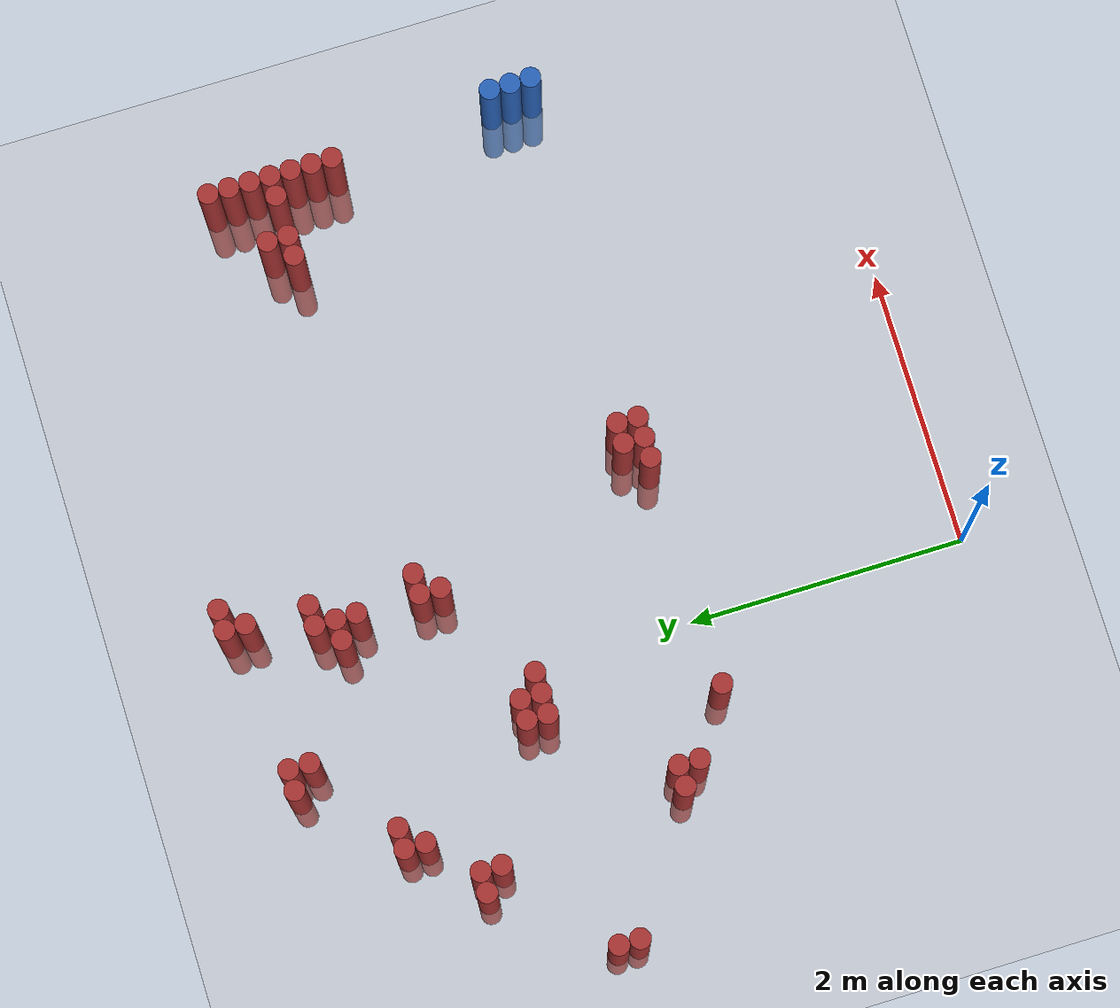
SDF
<sdf version="1.6">
 <world name="default">
  <model name="ground_plane">
   <static>1</static>
   <link name="link">
    <collision name="collision">
     <geometry><plane><normal>0 0 1</normal><size>100 100</size></plane></geometry>
     <surface><friction><ode><mu>100</mu><mu2>50</mu2></ode></friction></surface>
    </collision>
    <visual name="visual">
     <cast_shadows>0</cast_shadows>
     <geometry><plane><normal>0 0 1</normal><size>100 100</size></plane></geometry>
     <material>
      <script><uri>file://media/materials/scripts/gazebo.material</uri><name>Gazebo/Grey</name></script>
     </material>
    </visual>
   </link>
  </model>
  <model name="unit_cylinder_140">
   <static>1</static>
   <pose>3.925000 1.975000 0.000000 0.000000 0.000000 0.000000</pose>
   <link name="link">
    <inertial>
     <mass>1</mass>
     <inertia><ixx>0.145833</ixx><ixy>0</ixy><ixz>0</ixz><iyy>0.145833</iyy><iyz>0</iyz><izz>0.125</izz></inertia>
    </inertial>
    <collision name="collision">
     <geometry><cylinder><radius>0.075000</radius><length>1.5</length></cylinder></geometry>
    </collision>
    <visual name="visual">
     <geometry><cylinder><radius>0.075000</radius><length>1.5</length></cylinder></geometry>
     <material>
      <ambient>0.152000 0.379000 0.720000 1</ambient>
      <diffuse>0.152000 0.379000 0.720000 1</diffuse>
     </material>
     <material>
      <script><name>Gazebo/Grey</name><uri>file://media/materials/scripts/gazebo.material</uri></script>
     </material>
    </visual>
   </link>
  </model>
  <model name="unit_cylinder_142">
   <static>1</static>
   <pose>3.925000 2.125000 0.000000 0.000000 0.000000 0.000000</pose>
   <link name="link">
    <inertial>
     <mass>1</mass>
     <inertia><ixx>0.145833</ixx><ixy>0</ixy><ixz>0</ixz><iyy>0.145833</iyy><iyz>0</iyz><izz>0.125</izz></inertia>
    </inertial>
    <collision name="collision">
     <geometry><cylinder><radius>0.075000</radius><length>1.5</length></cylinder></geometry>
    </collision>
    <visual name="visual">
     <geometry><cylinder><radius>0.075000</radius><length>1.5</length></cylinder></geometry>
     <material>
      <ambient>0.152000 0.379000 0.720000 1</ambient>
      <diffuse>0.152000 0.379000 0.720000 1</diffuse>
     </material>
     <material>
      <script><name>Gazebo/Grey</name><uri>file://media/materials/scripts/gazebo.material</uri></script>
     </material>
    </visual>
   </link>
  </model>
  <model name="unit_cylinder_144">
   <static>1</static>
   <pose>3.925000 2.275000 0.000000 0.000000 0.000000 0.000000</pose>
   <link name="link">
    <inertial>
     <mass>1</mass>
     <inertia><ixx>0.145833</ixx><ixy>0</ixy><ixz>0</ixz><iyy>0.145833</iyy><iyz>0</iyz><izz>0.125</izz></inertia>
    </inertial>
    <collision name="collision">
     <geometry><cylinder><radius>0.075000</radius><length>1.5</length></cylinder></geometry>
    </collision>
    <visual name="visual">
     <geometry><cylinder><radius>0.075000</radius><length>1.5</length></cylinder></geometry>
     <material>
      <ambient>0.152000 0.379000 0.720000 1</ambient>
      <diffuse>0.152000 0.379000 0.720000 1</diffuse>
     </material>
     <material>
      <script><name>Gazebo/Grey</name><uri>file://media/materials/scripts/gazebo.material</uri></script>
     </material>
    </visual>
   </link>
  </model>
  <model name="unit_cylinder_301">
   <static>1</static>
   <pose>-2.075000 3.025000 0.000000 0.000000 0.000000 0.000000</pose>
   <link name="link">
    <inertial>
     <mass>1</mass>
     <inertia><ixx>0.145833</ixx><ixy>0</ixy><ixz>0</ixz><iyy>0.145833</iyy><iyz>0</iyz><izz>0.125</izz></inertia>
    </inertial>
    <collision name="collision">
     <geometry><cylinder><radius>0.075000</radius><length>1.5</length></cylinder></geometry>
    </collision>
    <visual name="visual">
     <geometry><cylinder><radius>0.075000</radius><length>1.5</length></cylinder></geometry>
     <material>
      <ambient>0.648000 0.192000 0.192000 1</ambient>
      <diffuse>0.648000 0.192000 0.192000 1</diffuse>
     </material>
     <material>
      <script><name>Gazebo/Grey</name><uri>file://media/materials/scripts/gazebo.material</uri></script>
     </material>
    </visual>
   </link>
  </model>
  <model name="unit_cylinder_302">
   <static>1</static>
   <pose>-2.075000 3.175000 0.000000 0.000000 0.000000 0.000000</pose>
   <link name="link">
    <inertial>
     <mass>1</mass>
     <inertia><ixx>0.145833</ixx><ixy>0</ixy><ixz>0</ixz><iyy>0.145833</iyy><iyz>0</iyz><izz>0.125</izz></inertia>
    </inertial>
    <collision name="collision">
     <geometry><cylinder><radius>0.075000</radius><length>1.5</length></cylinder></geometry>
    </collision>
    <visual name="visual">
     <geometry><cylinder><radius>0.075000</radius><length>1.5</length></cylinder></geometry>
     <material>
      <ambient>0.648000 0.192000 0.192000 1</ambient>
      <diffuse>0.648000 0.192000 0.192000 1</diffuse>
     </material>
     <material>
      <script><name>Gazebo/Grey</name><uri>file://media/materials/scripts/gazebo.material</uri></script>
     </material>
    </visual>
   </link>
  </model>
  <model name="unit_cylinder_313">
   <static>1</static>
   <pose>-1.475000 3.925000 0.000000 0.000000 0.000000 0.000000</pose>
   <link name="link">
    <inertial>
     <mass>1</mass>
     <inertia><ixx>0.145833</ixx><ixy>0</ixy><ixz>0</ixz><iyy>0.145833</iyy><iyz>0</iyz><izz>0.125</izz></inertia>
    </inertial>
    <collision name="collision">
     <geometry><cylinder><radius>0.075000</radius><length>1.5</length></cylinder></geometry>
    </collision>
    <visual name="visual">
     <geometry><cylinder><radius>0.075000</radius><length>1.5</length></cylinder></geometry>
     <material>
      <ambient>0.648000 0.192000 0.192000 1</ambient>
      <diffuse>0.648000 0.192000 0.192000 1</diffuse>
     </material>
     <material>
      <script><name>Gazebo/Grey</name><uri>file://media/materials/scripts/gazebo.material</uri></script>
     </material>
    </visual>
   </link>
  </model>
  <model name="unit_cylinder_321">
   <static>1</static>
   <pose>-1.325000 3.775000 0.000000 0.000000 0.000000 0.000000</pose>
   <link name="link">
    <inertial>
     <mass>1</mass>
     <inertia><ixx>0.145833</ixx><ixy>0</ixy><ixz>0</ixz><iyy>0.145833</iyy><iyz>0</iyz><izz>0.125</izz></inertia>
    </inertial>
    <collision name="collision">
     <geometry><cylinder><radius>0.075000</radius><length>1.5</length></cylinder></geometry>
    </collision>
    <visual name="visual">
     <geometry><cylinder><radius>0.075000</radius><length>1.5</length></cylinder></geometry>
     <material>
      <ambient>0.648000 0.192000 0.192000 1</ambient>
      <diffuse>0.648000 0.192000 0.192000 1</diffuse>
     </material>
     <material>
      <script><name>Gazebo/Grey</name><uri>file://media/materials/scripts/gazebo.material</uri></script>
     </material>
    </visual>
   </link>
  </model>
  <model name="unit_cylinder_322">
   <static>1</static>
   <pose>-1.325000 3.925000 0.000000 0.000000 0.000000 0.000000</pose>
   <link name="link">
    <inertial>
     <mass>1</mass>
     <inertia><ixx>0.145833</ixx><ixy>0</ixy><ixz>0</ixz><iyy>0.145833</iyy><iyz>0</iyz><izz>0.125</izz></inertia>
    </inertial>
    <collision name="collision">
     <geometry><cylinder><radius>0.075000</radius><length>1.5</length></cylinder></geometry>
    </collision>
    <visual name="visual">
     <geometry><cylinder><radius>0.075000</radius><length>1.5</length></cylinder></geometry>
     <material>
      <ambient>0.648000 0.192000 0.192000 1</ambient>
      <diffuse>0.648000 0.192000 0.192000 1</diffuse>
     </material>
     <material>
      <script><name>Gazebo/Grey</name><uri>file://media/materials/scripts/gazebo.material</uri></script>
     </material>
    </visual>
   </link>
  </model>
  <model name="unit_cylinder_330">
   <static>1</static>
   <pose>-1.175000 2.425000 0.000000 0.000000 0.000000 0.000000</pose>
   <link name="link">
    <inertial>
     <mass>1</mass>
     <inertia><ixx>0.145833</ixx><ixy>0</ixy><ixz>0</ixz><iyy>0.145833</iyy><iyz>0</iyz><izz>0.125</izz></inertia>
    </inertial>
    <collision name="collision">
     <geometry><cylinder><radius>0.075000</radius><length>1.5</length></cylinder></geometry>
    </collision>
    <visual name="visual">
     <geometry><cylinder><radius>0.075000</radius><length>1.5</length></cylinder></geometry>
     <material>
      <ambient>0.648000 0.192000 0.192000 1</ambient>
      <diffuse>0.648000 0.192000 0.192000 1</diffuse>
     </material>
     <material>
      <script><name>Gazebo/Grey</name><uri>file://media/materials/scripts/gazebo.material</uri></script>
     </material>
    </visual>
   </link>
  </model>
  <model name="unit_cylinder_334">
   <static>1</static>
   <pose>-1.025000 2.275000 0.000000 0.000000 0.000000 0.000000</pose>
   <link name="link">
    <inertial>
     <mass>1</mass>
     <inertia><ixx>0.145833</ixx><ixy>0</ixy><ixz>0</ixz><iyy>0.145833</iyy><iyz>0</iyz><izz>0.125</izz></inertia>
    </inertial>
    <collision name="collision">
     <geometry><cylinder><radius>0.075000</radius><length>1.5</length></cylinder></geometry>
    </collision>
    <visual name="visual">
     <geometry><cylinder><radius>0.075000</radius><length>1.5</length></cylinder></geometry>
     <material>
      <ambient>0.648000 0.192000 0.192000 1</ambient>
      <diffuse>0.648000 0.192000 0.192000 1</diffuse>
     </material>
     <material>
      <script><name>Gazebo/Grey</name><uri>file://media/materials/scripts/gazebo.material</uri></script>
     </material>
    </visual>
   </link>
  </model>
  <model name="unit_cylinder_335">
   <static>1</static>
   <pose>-1.025000 2.425000 0.000000 0.000000 0.000000 0.000000</pose>
   <link name="link">
    <inertial>
     <mass>1</mass>
     <inertia><ixx>0.145833</ixx><ixy>0</ixy><ixz>0</ixz><iyy>0.145833</iyy><iyz>0</iyz><izz>0.125</izz></inertia>
    </inertial>
    <collision name="collision">
     <geometry><cylinder><radius>0.075000</radius><length>1.5</length></cylinder></geometry>
    </collision>
    <visual name="visual">
     <geometry><cylinder><radius>0.075000</radius><length>1.5</length></cylinder></geometry>
     <material>
      <ambient>0.648000 0.192000 0.192000 1</ambient>
      <diffuse>0.648000 0.192000 0.192000 1</diffuse>
     </material>
     <material>
      <script><name>Gazebo/Grey</name><uri>file://media/materials/scripts/gazebo.material</uri></script>
     </material>
    </visual>
   </link>
  </model>
  <model name="unit_cylinder_336">
   <static>1</static>
   <pose>-1.025000 4.225000 0.000000 0.000000 0.000000 0.000000</pose>
   <link name="link">
    <inertial>
     <mass>1</mass>
     <inertia><ixx>0.145833</ixx><ixy>0</ixy><ixz>0</ixz><iyy>0.145833</iyy><iyz>0</iyz><izz>0.125</izz></inertia>
    </inertial>
    <collision name="collision">
     <geometry><cylinder><radius>0.075000</radius><length>1.5</length></cylinder></geometry>
    </collision>
    <visual name="visual">
     <geometry><cylinder><radius>0.075000</radius><length>1.5</length></cylinder></geometry>
     <material>
      <ambient>0.648000 0.192000 0.192000 1</ambient>
      <diffuse>0.648000 0.192000 0.192000 1</diffuse>
     </material>
     <material>
      <script><name>Gazebo/Grey</name><uri>file://media/materials/scripts/gazebo.material</uri></script>
     </material>
    </visual>
   </link>
  </model>
  <model name="unit_cylinder_337">
   <static>1</static>
   <pose>-1.025000 4.375000 0.000000 0.000000 0.000000 0.000000</pose>
   <link name="link">
    <inertial>
     <mass>1</mass>
     <inertia><ixx>0.145833</ixx><ixy>0</ixy><ixz>0</ixz><iyy>0.145833</iyy><iyz>0</iyz><izz>0.125</izz></inertia>
    </inertial>
    <collision name="collision">
     <geometry><cylinder><radius>0.075000</radius><length>1.5</length></cylinder></geometry>
    </collision>
    <visual name="visual">
     <geometry><cylinder><radius>0.075000</radius><length>1.5</length></cylinder></geometry>
     <material>
      <ambient>0.648000 0.192000 0.192000 1</ambient>
      <diffuse>0.648000 0.192000 0.192000 1</diffuse>
     </material>
     <material>
      <script><name>Gazebo/Grey</name><uri>file://media/materials/scripts/gazebo.material</uri></script>
     </material>
    </visual>
   </link>
  </model>
  <model name="unit_cylinder_340">
   <static>1</static>
   <pose>-0.875000 4.375000 0.000000 0.000000 0.000000 0.000000</pose>
   <link name="link">
    <inertial>
     <mass>1</mass>
     <inertia><ixx>0.145833</ixx><ixy>0</ixy><ixz>0</ixz><iyy>0.145833</iyy><iyz>0</iyz><izz>0.125</izz></inertia>
    </inertial>
    <collision name="collision">
     <geometry><cylinder><radius>0.075000</radius><length>1.5</length></cylinder></geometry>
    </collision>
    <visual name="visual">
     <geometry><cylinder><radius>0.075000</radius><length>1.5</length></cylinder></geometry>
     <material>
      <ambient>0.648000 0.192000 0.192000 1</ambient>
      <diffuse>0.648000 0.192000 0.192000 1</diffuse>
     </material>
     <material>
      <script><name>Gazebo/Grey</name><uri>file://media/materials/scripts/gazebo.material</uri></script>
     </material>
    </visual>
   </link>
  </model>
  <model name="unit_cylinder_350">
   <static>1</static>
   <pose>-0.575000 1.975000 0.000000 0.000000 0.000000 0.000000</pose>
   <link name="link">
    <inertial>
     <mass>1</mass>
     <inertia><ixx>0.145833</ixx><ixy>0</ixy><ixz>0</ixz><iyy>0.145833</iyy><iyz>0</iyz><izz>0.125</izz></inertia>
    </inertial>
    <collision name="collision">
     <geometry><cylinder><radius>0.075000</radius><length>1.5</length></cylinder></geometry>
    </collision>
    <visual name="visual">
     <geometry><cylinder><radius>0.075000</radius><length>1.5</length></cylinder></geometry>
     <material>
      <ambient>0.648000 0.192000 0.192000 1</ambient>
      <diffuse>0.648000 0.192000 0.192000 1</diffuse>
     </material>
     <material>
      <script><name>Gazebo/Grey</name><uri>file://media/materials/scripts/gazebo.material</uri></script>
     </material>
    </visual>
   </link>
  </model>
  <model name="unit_cylinder_352">
   <static>1</static>
   <pose>-0.425000 3.175000 0.000000 0.000000 0.000000 0.000000</pose>
   <link name="link">
    <inertial>
     <mass>1</mass>
     <inertia><ixx>0.145833</ixx><ixy>0</ixy><ixz>0</ixz><iyy>0.145833</iyy><iyz>0</iyz><izz>0.125</izz></inertia>
    </inertial>
    <collision name="collision">
     <geometry><cylinder><radius>0.075000</radius><length>1.5</length></cylinder></geometry>
    </collision>
    <visual name="visual">
     <geometry><cylinder><radius>0.075000</radius><length>1.5</length></cylinder></geometry>
     <material>
      <ambient>0.648000 0.192000 0.192000 1</ambient>
      <diffuse>0.648000 0.192000 0.192000 1</diffuse>
     </material>
     <material>
      <script><name>Gazebo/Grey</name><uri>file://media/materials/scripts/gazebo.material</uri></script>
     </material>
    </visual>
   </link>
  </model>
  <model name="unit_cylinder_353">
   <static>1</static>
   <pose>-0.425000 3.325000 0.000000 0.000000 0.000000 0.000000</pose>
   <link name="link">
    <inertial>
     <mass>1</mass>
     <inertia><ixx>0.145833</ixx><ixy>0</ixy><ixz>0</ixz><iyy>0.145833</iyy><iyz>0</iyz><izz>0.125</izz></inertia>
    </inertial>
    <collision name="collision">
     <geometry><cylinder><radius>0.075000</radius><length>1.5</length></cylinder></geometry>
    </collision>
    <visual name="visual">
     <geometry><cylinder><radius>0.075000</radius><length>1.5</length></cylinder></geometry>
     <material>
      <ambient>0.648000 0.192000 0.192000 1</ambient>
      <diffuse>0.648000 0.192000 0.192000 1</diffuse>
     </material>
     <material>
      <script><name>Gazebo/Grey</name><uri>file://media/materials/scripts/gazebo.material</uri></script>
     </material>
    </visual>
   </link>
  </model>
  <model name="unit_cylinder_354">
   <static>1</static>
   <pose>-0.425000 4.975000 0.000000 0.000000 0.000000 0.000000</pose>
   <link name="link">
    <inertial>
     <mass>1</mass>
     <inertia><ixx>0.145833</ixx><ixy>0</ixy><ixz>0</ixz><iyy>0.145833</iyy><iyz>0</iyz><izz>0.125</izz></inertia>
    </inertial>
    <collision name="collision">
     <geometry><cylinder><radius>0.075000</radius><length>1.5</length></cylinder></geometry>
    </collision>
    <visual name="visual">
     <geometry><cylinder><radius>0.075000</radius><length>1.5</length></cylinder></geometry>
     <material>
      <ambient>0.648000 0.192000 0.192000 1</ambient>
      <diffuse>0.648000 0.192000 0.192000 1</diffuse>
     </material>
     <material>
      <script><name>Gazebo/Grey</name><uri>file://media/materials/scripts/gazebo.material</uri></script>
     </material>
    </visual>
   </link>
  </model>
  <model name="unit_cylinder_356">
   <static>1</static>
   <pose>-0.275000 3.175000 0.000000 0.000000 0.000000 0.000000</pose>
   <link name="link">
    <inertial>
     <mass>1</mass>
     <inertia><ixx>0.145833</ixx><ixy>0</ixy><ixz>0</ixz><iyy>0.145833</iyy><iyz>0</iyz><izz>0.125</izz></inertia>
    </inertial>
    <collision name="collision">
     <geometry><cylinder><radius>0.075000</radius><length>1.5</length></cylinder></geometry>
    </collision>
    <visual name="visual">
     <geometry><cylinder><radius>0.075000</radius><length>1.5</length></cylinder></geometry>
     <material>
      <ambient>0.648000 0.192000 0.192000 1</ambient>
      <diffuse>0.648000 0.192000 0.192000 1</diffuse>
     </material>
     <material>
      <script><name>Gazebo/Grey</name><uri>file://media/materials/scripts/gazebo.material</uri></script>
     </material>
    </visual>
   </link>
  </model>
  <model name="unit_cylinder_357">
   <static>1</static>
   <pose>-0.275000 3.325000 0.000000 0.000000 0.000000 0.000000</pose>
   <link name="link">
    <inertial>
     <mass>1</mass>
     <inertia><ixx>0.145833</ixx><ixy>0</ixy><ixz>0</ixz><iyy>0.145833</iyy><iyz>0</iyz><izz>0.125</izz></inertia>
    </inertial>
    <collision name="collision">
     <geometry><cylinder><radius>0.075000</radius><length>1.5</length></cylinder></geometry>
    </collision>
    <visual name="visual">
     <geometry><cylinder><radius>0.075000</radius><length>1.5</length></cylinder></geometry>
     <material>
      <ambient>0.648000 0.192000 0.192000 1</ambient>
      <diffuse>0.648000 0.192000 0.192000 1</diffuse>
     </material>
     <material>
      <script><name>Gazebo/Grey</name><uri>file://media/materials/scripts/gazebo.material</uri></script>
     </material>
    </visual>
   </link>
  </model>
  <model name="unit_cylinder_358">
   <static>1</static>
   <pose>-0.275000 4.825000 0.000000 0.000000 0.000000 0.000000</pose>
   <link name="link">
    <inertial>
     <mass>1</mass>
     <inertia><ixx>0.145833</ixx><ixy>0</ixy><ixz>0</ixz><iyy>0.145833</iyy><iyz>0</iyz><izz>0.125</izz></inertia>
    </inertial>
    <collision name="collision">
     <geometry><cylinder><radius>0.075000</radius><length>1.5</length></cylinder></geometry>
    </collision>
    <visual name="visual">
     <geometry><cylinder><radius>0.075000</radius><length>1.5</length></cylinder></geometry>
     <material>
      <ambient>0.648000 0.192000 0.192000 1</ambient>
      <diffuse>0.648000 0.192000 0.192000 1</diffuse>
     </material>
     <material>
      <script><name>Gazebo/Grey</name><uri>file://media/materials/scripts/gazebo.material</uri></script>
     </material>
    </visual>
   </link>
  </model>
  <model name="unit_cylinder_359">
   <static>1</static>
   <pose>-0.275000 4.975000 0.000000 0.000000 0.000000 0.000000</pose>
   <link name="link">
    <inertial>
     <mass>1</mass>
     <inertia><ixx>0.145833</ixx><ixy>0</ixy><ixz>0</ixz><iyy>0.145833</iyy><iyz>0</iyz><izz>0.125</izz></inertia>
    </inertial>
    <collision name="collision">
     <geometry><cylinder><radius>0.075000</radius><length>1.5</length></cylinder></geometry>
    </collision>
    <visual name="visual">
     <geometry><cylinder><radius>0.075000</radius><length>1.5</length></cylinder></geometry>
     <material>
      <ambient>0.648000 0.192000 0.192000 1</ambient>
      <diffuse>0.648000 0.192000 0.192000 1</diffuse>
     </material>
     <material>
      <script><name>Gazebo/Grey</name><uri>file://media/materials/scripts/gazebo.material</uri></script>
     </material>
    </visual>
   </link>
  </model>
  <model name="unit_cylinder_362">
   <static>1</static>
   <pose>-0.125000 3.175000 0.000000 0.000000 0.000000 0.000000</pose>
   <link name="link">
    <inertial>
     <mass>1</mass>
     <inertia><ixx>0.145833</ixx><ixy>0</ixy><ixz>0</ixz><iyy>0.145833</iyy><iyz>0</iyz><izz>0.125</izz></inertia>
    </inertial>
    <collision name="collision">
     <geometry><cylinder><radius>0.075000</radius><length>1.5</length></cylinder></geometry>
    </collision>
    <visual name="visual">
     <geometry><cylinder><radius>0.075000</radius><length>1.5</length></cylinder></geometry>
     <material>
      <ambient>0.648000 0.192000 0.192000 1</ambient>
      <diffuse>0.648000 0.192000 0.192000 1</diffuse>
     </material>
     <material>
      <script><name>Gazebo/Grey</name><uri>file://media/materials/scripts/gazebo.material</uri></script>
     </material>
    </visual>
   </link>
  </model>
  <model name="unit_cylinder_370">
   <static>1</static>
   <pose>0.475000 4.375000 0.000000 0.000000 0.000000 0.000000</pose>
   <link name="link">
    <inertial>
     <mass>1</mass>
     <inertia><ixx>0.145833</ixx><ixy>0</ixy><ixz>0</ixz><iyy>0.145833</iyy><iyz>0</iyz><izz>0.125</izz></inertia>
    </inertial>
    <collision name="collision">
     <geometry><cylinder><radius>0.075000</radius><length>1.5</length></cylinder></geometry>
    </collision>
    <visual name="visual">
     <geometry><cylinder><radius>0.075000</radius><length>1.5</length></cylinder></geometry>
     <material>
      <ambient>0.648000 0.192000 0.192000 1</ambient>
      <diffuse>0.648000 0.192000 0.192000 1</diffuse>
     </material>
     <material>
      <script><name>Gazebo/Grey</name><uri>file://media/materials/scripts/gazebo.material</uri></script>
     </material>
    </visual>
   </link>
  </model>
  <model name="unit_cylinder_374">
   <static>1</static>
   <pose>0.625000 3.625000 0.000000 0.000000 0.000000 0.000000</pose>
   <link name="link">
    <inertial>
     <mass>1</mass>
     <inertia><ixx>0.145833</ixx><ixy>0</ixy><ixz>0</ixz><iyy>0.145833</iyy><iyz>0</iyz><izz>0.125</izz></inertia>
    </inertial>
    <collision name="collision">
     <geometry><cylinder><radius>0.075000</radius><length>1.5</length></cylinder></geometry>
    </collision>
    <visual name="visual">
     <geometry><cylinder><radius>0.075000</radius><length>1.5</length></cylinder></geometry>
     <material>
      <ambient>0.648000 0.192000 0.192000 1</ambient>
      <diffuse>0.648000 0.192000 0.192000 1</diffuse>
     </material>
     <material>
      <script><name>Gazebo/Grey</name><uri>file://media/materials/scripts/gazebo.material</uri></script>
     </material>
    </visual>
   </link>
  </model>
  <model name="unit_cylinder_375">
   <static>1</static>
   <pose>0.625000 3.775000 0.000000 0.000000 0.000000 0.000000</pose>
   <link name="link">
    <inertial>
     <mass>1</mass>
     <inertia><ixx>0.145833</ixx><ixy>0</ixy><ixz>0</ixz><iyy>0.145833</iyy><iyz>0</iyz><izz>0.125</izz></inertia>
    </inertial>
    <collision name="collision">
     <geometry><cylinder><radius>0.075000</radius><length>1.5</length></cylinder></geometry>
    </collision>
    <visual name="visual">
     <geometry><cylinder><radius>0.075000</radius><length>1.5</length></cylinder></geometry>
     <material>
      <ambient>0.648000 0.192000 0.192000 1</ambient>
      <diffuse>0.648000 0.192000 0.192000 1</diffuse>
     </material>
     <material>
      <script><name>Gazebo/Grey</name><uri>file://media/materials/scripts/gazebo.material</uri></script>
     </material>
    </visual>
   </link>
  </model>
  <model name="unit_cylinder_376">
   <static>1</static>
   <pose>0.625000 4.225000 0.000000 0.000000 0.000000 0.000000</pose>
   <link name="link">
    <inertial>
     <mass>1</mass>
     <inertia><ixx>0.145833</ixx><ixy>0</ixy><ixz>0</ixz><iyy>0.145833</iyy><iyz>0</iyz><izz>0.125</izz></inertia>
    </inertial>
    <collision name="collision">
     <geometry><cylinder><radius>0.075000</radius><length>1.5</length></cylinder></geometry>
    </collision>
    <visual name="visual">
     <geometry><cylinder><radius>0.075000</radius><length>1.5</length></cylinder></geometry>
     <material>
      <ambient>0.648000 0.192000 0.192000 1</ambient>
      <diffuse>0.648000 0.192000 0.192000 1</diffuse>
     </material>
     <material>
      <script><name>Gazebo/Grey</name><uri>file://media/materials/scripts/gazebo.material</uri></script>
     </material>
    </visual>
   </link>
  </model>
  <model name="unit_cylinder_377">
   <static>1</static>
   <pose>0.625000 4.375000 0.000000 0.000000 0.000000 0.000000</pose>
   <link name="link">
    <inertial>
     <mass>1</mass>
     <inertia><ixx>0.145833</ixx><ixy>0</ixy><ixz>0</ixz><iyy>0.145833</iyy><iyz>0</iyz><izz>0.125</izz></inertia>
    </inertial>
    <collision name="collision">
     <geometry><cylinder><radius>0.075000</radius><length>1.5</length></cylinder></geometry>
    </collision>
    <visual name="visual">
     <geometry><cylinder><radius>0.075000</radius><length>1.5</length></cylinder></geometry>
     <material>
      <ambient>0.648000 0.192000 0.192000 1</ambient>
      <diffuse>0.648000 0.192000 0.192000 1</diffuse>
     </material>
     <material>
      <script><name>Gazebo/Grey</name><uri>file://media/materials/scripts/gazebo.material</uri></script>
     </material>
    </visual>
   </link>
  </model>
  <model name="unit_cylinder_378">
   <static>1</static>
   <pose>0.625000 4.525000 0.000000 0.000000 0.000000 0.000000</pose>
   <link name="link">
    <inertial>
     <mass>1</mass>
     <inertia><ixx>0.145833</ixx><ixy>0</ixy><ixz>0</ixz><iyy>0.145833</iyy><iyz>0</iyz><izz>0.125</izz></inertia>
    </inertial>
    <collision name="collision">
     <geometry><cylinder><radius>0.075000</radius><length>1.5</length></cylinder></geometry>
    </collision>
    <visual name="visual">
     <geometry><cylinder><radius>0.075000</radius><length>1.5</length></cylinder></geometry>
     <material>
      <ambient>0.648000 0.192000 0.192000 1</ambient>
      <diffuse>0.648000 0.192000 0.192000 1</diffuse>
     </material>
     <material>
      <script><name>Gazebo/Grey</name><uri>file://media/materials/scripts/gazebo.material</uri></script>
     </material>
    </visual>
   </link>
  </model>
  <model name="unit_cylinder_381">
   <static>1</static>
   <pose>0.775000 3.775000 0.000000 0.000000 0.000000 0.000000</pose>
   <link name="link">
    <inertial>
     <mass>1</mass>
     <inertia><ixx>0.145833</ixx><ixy>0</ixy><ixz>0</ixz><iyy>0.145833</iyy><iyz>0</iyz><izz>0.125</izz></inertia>
    </inertial>
    <collision name="collision">
     <geometry><cylinder><radius>0.075000</radius><length>1.5</length></cylinder></geometry>
    </collision>
    <visual name="visual">
     <geometry><cylinder><radius>0.075000</radius><length>1.5</length></cylinder></geometry>
     <material>
      <ambient>0.648000 0.192000 0.192000 1</ambient>
      <diffuse>0.648000 0.192000 0.192000 1</diffuse>
     </material>
     <material>
      <script><name>Gazebo/Grey</name><uri>file://media/materials/scripts/gazebo.material</uri></script>
     </material>
    </visual>
   </link>
  </model>
  <model name="unit_cylinder_382">
   <static>1</static>
   <pose>0.775000 4.525000 0.000000 0.000000 0.000000 0.000000</pose>
   <link name="link">
    <inertial>
     <mass>1</mass>
     <inertia><ixx>0.145833</ixx><ixy>0</ixy><ixz>0</ixz><iyy>0.145833</iyy><iyz>0</iyz><izz>0.125</izz></inertia>
    </inertial>
    <collision name="collision">
     <geometry><cylinder><radius>0.075000</radius><length>1.5</length></cylinder></geometry>
    </collision>
    <visual name="visual">
     <geometry><cylinder><radius>0.075000</radius><length>1.5</length></cylinder></geometry>
     <material>
      <ambient>0.648000 0.192000 0.192000 1</ambient>
      <diffuse>0.648000 0.192000 0.192000 1</diffuse>
     </material>
     <material>
      <script><name>Gazebo/Grey</name><uri>file://media/materials/scripts/gazebo.material</uri></script>
     </material>
    </visual>
   </link>
  </model>
  <model name="unit_cylinder_383">
   <static>1</static>
   <pose>0.775000 4.975000 0.000000 0.000000 0.000000 0.000000</pose>
   <link name="link">
    <inertial>
     <mass>1</mass>
     <inertia><ixx>0.145833</ixx><ixy>0</ixy><ixz>0</ixz><iyy>0.145833</iyy><iyz>0</iyz><izz>0.125</izz></inertia>
    </inertial>
    <collision name="collision">
     <geometry><cylinder><radius>0.075000</radius><length>1.5</length></cylinder></geometry>
    </collision>
    <visual name="visual">
     <geometry><cylinder><radius>0.075000</radius><length>1.5</length></cylinder></geometry>
     <material>
      <ambient>0.648000 0.192000 0.192000 1</ambient>
      <diffuse>0.648000 0.192000 0.192000 1</diffuse>
     </material>
     <material>
      <script><name>Gazebo/Grey</name><uri>file://media/materials/scripts/gazebo.material</uri></script>
     </material>
    </visual>
   </link>
  </model>
  <model name="unit_cylinder_384">
   <static>1</static>
   <pose>0.775000 5.125000 0.000000 0.000000 0.000000 0.000000</pose>
   <link name="link">
    <inertial>
     <mass>1</mass>
     <inertia><ixx>0.145833</ixx><ixy>0</ixy><ixz>0</ixz><iyy>0.145833</iyy><iyz>0</iyz><izz>0.125</izz></inertia>
    </inertial>
    <collision name="collision">
     <geometry><cylinder><radius>0.075000</radius><length>1.5</length></cylinder></geometry>
    </collision>
    <visual name="visual">
     <geometry><cylinder><radius>0.075000</radius><length>1.5</length></cylinder></geometry>
     <material>
      <ambient>0.648000 0.192000 0.192000 1</ambient>
      <diffuse>0.648000 0.192000 0.192000 1</diffuse>
     </material>
     <material>
      <script><name>Gazebo/Grey</name><uri>file://media/materials/scripts/gazebo.material</uri></script>
     </material>
    </visual>
   </link>
  </model>
  <model name="unit_cylinder_387">
   <static>1</static>
   <pose>0.925000 5.125000 0.000000 0.000000 0.000000 0.000000</pose>
   <link name="link">
    <inertial>
     <mass>1</mass>
     <inertia><ixx>0.145833</ixx><ixy>0</ixy><ixz>0</ixz><iyy>0.145833</iyy><iyz>0</iyz><izz>0.125</izz></inertia>
    </inertial>
    <collision name="collision">
     <geometry><cylinder><radius>0.075000</radius><length>1.5</length></cylinder></geometry>
    </collision>
    <visual name="visual">
     <geometry><cylinder><radius>0.075000</radius><length>1.5</length></cylinder></geometry>
     <material>
      <ambient>0.648000 0.192000 0.192000 1</ambient>
      <diffuse>0.648000 0.192000 0.192000 1</diffuse>
     </material>
     <material>
      <script><name>Gazebo/Grey</name><uri>file://media/materials/scripts/gazebo.material</uri></script>
     </material>
    </visual>
   </link>
  </model>
  <model name="unit_cylinder_390">
   <static>1</static>
   <pose>1.075000 1.975000 0.000000 0.000000 0.000000 0.000000</pose>
   <link name="link">
    <inertial>
     <mass>1</mass>
     <inertia><ixx>0.145833</ixx><ixy>0</ixy><ixz>0</ixz><iyy>0.145833</iyy><iyz>0</iyz><izz>0.125</izz></inertia>
    </inertial>
    <collision name="collision">
     <geometry><cylinder><radius>0.075000</radius><length>1.5</length></cylinder></geometry>
    </collision>
    <visual name="visual">
     <geometry><cylinder><radius>0.075000</radius><length>1.5</length></cylinder></geometry>
     <material>
      <ambient>0.648000 0.192000 0.192000 1</ambient>
      <diffuse>0.648000 0.192000 0.192000 1</diffuse>
     </material>
     <material>
      <script><name>Gazebo/Grey</name><uri>file://media/materials/scripts/gazebo.material</uri></script>
     </material>
    </visual>
   </link>
  </model>
  <model name="unit_cylinder_391">
   <static>1</static>
   <pose>1.225000 1.975000 0.000000 0.000000 0.000000 0.000000</pose>
   <link name="link">
    <inertial>
     <mass>1</mass>
     <inertia><ixx>0.145833</ixx><ixy>0</ixy><ixz>0</ixz><iyy>0.145833</iyy><iyz>0</iyz><izz>0.125</izz></inertia>
    </inertial>
    <collision name="collision">
     <geometry><cylinder><radius>0.075000</radius><length>1.5</length></cylinder></geometry>
    </collision>
    <visual name="visual">
     <geometry><cylinder><radius>0.075000</radius><length>1.5</length></cylinder></geometry>
     <material>
      <ambient>0.648000 0.192000 0.192000 1</ambient>
      <diffuse>0.648000 0.192000 0.192000 1</diffuse>
     </material>
     <material>
      <script><name>Gazebo/Grey</name><uri>file://media/materials/scripts/gazebo.material</uri></script>
     </material>
    </visual>
   </link>
  </model>
  <model name="unit_cylinder_392">
   <static>1</static>
   <pose>1.225000 2.125000 0.000000 0.000000 0.000000 0.000000</pose>
   <link name="link">
    <inertial>
     <mass>1</mass>
     <inertia><ixx>0.145833</ixx><ixy>0</ixy><ixz>0</ixz><iyy>0.145833</iyy><iyz>0</iyz><izz>0.125</izz></inertia>
    </inertial>
    <collision name="collision">
     <geometry><cylinder><radius>0.075000</radius><length>1.5</length></cylinder></geometry>
    </collision>
    <visual name="visual">
     <geometry><cylinder><radius>0.075000</radius><length>1.5</length></cylinder></geometry>
     <material>
      <ambient>0.648000 0.192000 0.192000 1</ambient>
      <diffuse>0.648000 0.192000 0.192000 1</diffuse>
     </material>
     <material>
      <script><name>Gazebo/Grey</name><uri>file://media/materials/scripts/gazebo.material</uri></script>
     </material>
    </visual>
   </link>
  </model>
  <model name="unit_cylinder_393">
   <static>1</static>
   <pose>1.375000 1.975000 0.000000 0.000000 0.000000 0.000000</pose>
   <link name="link">
    <inertial>
     <mass>1</mass>
     <inertia><ixx>0.145833</ixx><ixy>0</ixy><ixz>0</ixz><iyy>0.145833</iyy><iyz>0</iyz><izz>0.125</izz></inertia>
    </inertial>
    <collision name="collision">
     <geometry><cylinder><radius>0.075000</radius><length>1.5</length></cylinder></geometry>
    </collision>
    <visual name="visual">
     <geometry><cylinder><radius>0.075000</radius><length>1.5</length></cylinder></geometry>
     <material>
      <ambient>0.648000 0.192000 0.192000 1</ambient>
      <diffuse>0.648000 0.192000 0.192000 1</diffuse>
     </material>
     <material>
      <script><name>Gazebo/Grey</name><uri>file://media/materials/scripts/gazebo.material</uri></script>
     </material>
    </visual>
   </link>
  </model>
  <model name="unit_cylinder_394">
   <static>1</static>
   <pose>1.375000 2.125000 0.000000 0.000000 0.000000 0.000000</pose>
   <link name="link">
    <inertial>
     <mass>1</mass>
     <inertia><ixx>0.145833</ixx><ixy>0</ixy><ixz>0</ixz><iyy>0.145833</iyy><iyz>0</iyz><izz>0.125</izz></inertia>
    </inertial>
    <collision name="collision">
     <geometry><cylinder><radius>0.075000</radius><length>1.5</length></cylinder></geometry>
    </collision>
    <visual name="visual">
     <geometry><cylinder><radius>0.075000</radius><length>1.5</length></cylinder></geometry>
     <material>
      <ambient>0.648000 0.192000 0.192000 1</ambient>
      <diffuse>0.648000 0.192000 0.192000 1</diffuse>
     </material>
     <material>
      <script><name>Gazebo/Grey</name><uri>file://media/materials/scripts/gazebo.material</uri></script>
     </material>
    </visual>
   </link>
  </model>
  <model name="unit_cylinder_402">
   <static>1</static>
   <pose>3.175000 3.925000 0.000000 0.000000 0.000000 0.000000</pose>
   <link name="link">
    <inertial>
     <mass>1</mass>
     <inertia><ixx>0.145833</ixx><ixy>0</ixy><ixz>0</ixz><iyy>0.145833</iyy><iyz>0</iyz><izz>0.125</izz></inertia>
    </inertial>
    <collision name="collision">
     <geometry><cylinder><radius>0.075000</radius><length>1.5</length></cylinder></geometry>
    </collision>
    <visual name="visual">
     <geometry><cylinder><radius>0.075000</radius><length>1.5</length></cylinder></geometry>
     <material>
      <ambient>0.648000 0.192000 0.192000 1</ambient>
      <diffuse>0.648000 0.192000 0.192000 1</diffuse>
     </material>
     <material>
      <script><name>Gazebo/Grey</name><uri>file://media/materials/scripts/gazebo.material</uri></script>
     </material>
    </visual>
   </link>
  </model>
  <model name="unit_cylinder_404">
   <static>1</static>
   <pose>3.325000 3.925000 0.000000 0.000000 0.000000 0.000000</pose>
   <link name="link">
    <inertial>
     <mass>1</mass>
     <inertia><ixx>0.145833</ixx><ixy>0</ixy><ixz>0</ixz><iyy>0.145833</iyy><iyz>0</iyz><izz>0.125</izz></inertia>
    </inertial>
    <collision name="collision">
     <geometry><cylinder><radius>0.075000</radius><length>1.5</length></cylinder></geometry>
    </collision>
    <visual name="visual">
     <geometry><cylinder><radius>0.075000</radius><length>1.5</length></cylinder></geometry>
     <material>
      <ambient>0.648000 0.192000 0.192000 1</ambient>
      <diffuse>0.648000 0.192000 0.192000 1</diffuse>
     </material>
     <material>
      <script><name>Gazebo/Grey</name><uri>file://media/materials/scripts/gazebo.material</uri></script>
     </material>
    </visual>
   </link>
  </model>
  <model name="unit_cylinder_405">
   <static>1</static>
   <pose>3.325000 4.075000 0.000000 0.000000 0.000000 0.000000</pose>
   <link name="link">
    <inertial>
     <mass>1</mass>
     <inertia><ixx>0.145833</ixx><ixy>0</ixy><ixz>0</ixz><iyy>0.145833</iyy><iyz>0</iyz><izz>0.125</izz></inertia>
    </inertial>
    <collision name="collision">
     <geometry><cylinder><radius>0.075000</radius><length>1.5</length></cylinder></geometry>
    </collision>
    <visual name="visual">
     <geometry><cylinder><radius>0.075000</radius><length>1.5</length></cylinder></geometry>
     <material>
      <ambient>0.648000 0.192000 0.192000 1</ambient>
      <diffuse>0.648000 0.192000 0.192000 1</diffuse>
     </material>
     <material>
      <script><name>Gazebo/Grey</name><uri>file://media/materials/scripts/gazebo.material</uri></script>
     </material>
    </visual>
   </link>
  </model>
  <model name="unit_cylinder_410">
   <static>1</static>
   <pose>3.625000 3.925000 0.000000 0.000000 0.000000 0.000000</pose>
   <link name="link">
    <inertial>
     <mass>1</mass>
     <inertia><ixx>0.145833</ixx><ixy>0</ixy><ixz>0</ixz><iyy>0.145833</iyy><iyz>0</iyz><izz>0.125</izz></inertia>
    </inertial>
    <collision name="collision">
     <geometry><cylinder><radius>0.075000</radius><length>1.5</length></cylinder></geometry>
    </collision>
    <visual name="visual">
     <geometry><cylinder><radius>0.075000</radius><length>1.5</length></cylinder></geometry>
     <material>
      <ambient>0.648000 0.192000 0.192000 1</ambient>
      <diffuse>0.648000 0.192000 0.192000 1</diffuse>
     </material>
     <material>
      <script><name>Gazebo/Grey</name><uri>file://media/materials/scripts/gazebo.material</uri></script>
     </material>
    </visual>
   </link>
  </model>
  <model name="unit_cylinder_418">
   <static>1</static>
   <pose>3.775000 3.475000 0.000000 0.000000 0.000000 0.000000</pose>
   <link name="link">
    <inertial>
     <mass>1</mass>
     <inertia><ixx>0.145833</ixx><ixy>0</ixy><ixz>0</ixz><iyy>0.145833</iyy><iyz>0</iyz><izz>0.125</izz></inertia>
    </inertial>
    <collision name="collision">
     <geometry><cylinder><radius>0.075000</radius><length>1.5</length></cylinder></geometry>
    </collision>
    <visual name="visual">
     <geometry><cylinder><radius>0.075000</radius><length>1.5</length></cylinder></geometry>
     <material>
      <ambient>0.648000 0.192000 0.192000 1</ambient>
      <diffuse>0.648000 0.192000 0.192000 1</diffuse>
     </material>
     <material>
      <script><name>Gazebo/Grey</name><uri>file://media/materials/scripts/gazebo.material</uri></script>
     </material>
    </visual>
   </link>
  </model>
  <model name="unit_cylinder_419">
   <static>1</static>
   <pose>3.775000 3.625000 0.000000 0.000000 0.000000 0.000000</pose>
   <link name="link">
    <inertial>
     <mass>1</mass>
     <inertia><ixx>0.145833</ixx><ixy>0</ixy><ixz>0</ixz><iyy>0.145833</iyy><iyz>0</iyz><izz>0.125</izz></inertia>
    </inertial>
    <collision name="collision">
     <geometry><cylinder><radius>0.075000</radius><length>1.5</length></cylinder></geometry>
    </collision>
    <visual name="visual">
     <geometry><cylinder><radius>0.075000</radius><length>1.5</length></cylinder></geometry>
     <material>
      <ambient>0.648000 0.192000 0.192000 1</ambient>
      <diffuse>0.648000 0.192000 0.192000 1</diffuse>
     </material>
     <material>
      <script><name>Gazebo/Grey</name><uri>file://media/materials/scripts/gazebo.material</uri></script>
     </material>
    </visual>
   </link>
  </model>
  <model name="unit_cylinder_420">
   <static>1</static>
   <pose>3.775000 3.775000 0.000000 0.000000 0.000000 0.000000</pose>
   <link name="link">
    <inertial>
     <mass>1</mass>
     <inertia><ixx>0.145833</ixx><ixy>0</ixy><ixz>0</ixz><iyy>0.145833</iyy><iyz>0</iyz><izz>0.125</izz></inertia>
    </inertial>
    <collision name="collision">
     <geometry><cylinder><radius>0.075000</radius><length>1.5</length></cylinder></geometry>
    </collision>
    <visual name="visual">
     <geometry><cylinder><radius>0.075000</radius><length>1.5</length></cylinder></geometry>
     <material>
      <ambient>0.648000 0.192000 0.192000 1</ambient>
      <diffuse>0.648000 0.192000 0.192000 1</diffuse>
     </material>
     <material>
      <script><name>Gazebo/Grey</name><uri>file://media/materials/scripts/gazebo.material</uri></script>
     </material>
    </visual>
   </link>
  </model>
  <model name="unit_cylinder_421">
   <static>1</static>
   <pose>3.775000 3.925000 0.000000 0.000000 0.000000 0.000000</pose>
   <link name="link">
    <inertial>
     <mass>1</mass>
     <inertia><ixx>0.145833</ixx><ixy>0</ixy><ixz>0</ixz><iyy>0.145833</iyy><iyz>0</iyz><izz>0.125</izz></inertia>
    </inertial>
    <collision name="collision">
     <geometry><cylinder><radius>0.075000</radius><length>1.5</length></cylinder></geometry>
    </collision>
    <visual name="visual">
     <geometry><cylinder><radius>0.075000</radius><length>1.5</length></cylinder></geometry>
     <material>
      <ambient>0.648000 0.192000 0.192000 1</ambient>
      <diffuse>0.648000 0.192000 0.192000 1</diffuse>
     </material>
     <material>
      <script><name>Gazebo/Grey</name><uri>file://media/materials/scripts/gazebo.material</uri></script>
     </material>
    </visual>
   </link>
  </model>
  <model name="unit_cylinder_422">
   <static>1</static>
   <pose>3.775000 4.075000 0.000000 0.000000 0.000000 0.000000</pose>
   <link name="link">
    <inertial>
     <mass>1</mass>
     <inertia><ixx>0.145833</ixx><ixy>0</ixy><ixz>0</ixz><iyy>0.145833</iyy><iyz>0</iyz><izz>0.125</izz></inertia>
    </inertial>
    <collision name="collision">
     <geometry><cylinder><radius>0.075000</radius><length>1.5</length></cylinder></geometry>
    </collision>
    <visual name="visual">
     <geometry><cylinder><radius>0.075000</radius><length>1.5</length></cylinder></geometry>
     <material>
      <ambient>0.648000 0.192000 0.192000 1</ambient>
      <diffuse>0.648000 0.192000 0.192000 1</diffuse>
     </material>
     <material>
      <script><name>Gazebo/Grey</name><uri>file://media/materials/scripts/gazebo.material</uri></script>
     </material>
    </visual>
   </link>
  </model>
  <model name="unit_cylinder_423">
   <static>1</static>
   <pose>3.775000 4.225000 0.000000 0.000000 0.000000 0.000000</pose>
   <link name="link">
    <inertial>
     <mass>1</mass>
     <inertia><ixx>0.145833</ixx><ixy>0</ixy><ixz>0</ixz><iyy>0.145833</iyy><iyz>0</iyz><izz>0.125</izz></inertia>
    </inertial>
    <collision name="collision">
     <geometry><cylinder><radius>0.075000</radius><length>1.5</length></cylinder></geometry>
    </collision>
    <visual name="visual">
     <geometry><cylinder><radius>0.075000</radius><length>1.5</length></cylinder></geometry>
     <material>
      <ambient>0.648000 0.192000 0.192000 1</ambient>
      <diffuse>0.648000 0.192000 0.192000 1</diffuse>
     </material>
     <material>
      <script><name>Gazebo/Grey</name><uri>file://media/materials/scripts/gazebo.material</uri></script>
     </material>
    </visual>
   </link>
  </model>
  <model name="unit_cylinder_424">
   <static>1</static>
   <pose>3.775000 4.375000 0.000000 0.000000 0.000000 0.000000</pose>
   <link name="link">
    <inertial>
     <mass>1</mass>
     <inertia><ixx>0.145833</ixx><ixy>0</ixy><ixz>0</ixz><iyy>0.145833</iyy><iyz>0</iyz><izz>0.125</izz></inertia>
    </inertial>
    <collision name="collision">
     <geometry><cylinder><radius>0.075000</radius><length>1.5</length></cylinder></geometry>
    </collision>
    <visual name="visual">
     <geometry><cylinder><radius>0.075000</radius><length>1.5</length></cylinder></geometry>
     <material>
      <ambient>0.648000 0.192000 0.192000 1</ambient>
      <diffuse>0.648000 0.192000 0.192000 1</diffuse>
     </material>
     <material>
      <script><name>Gazebo/Grey</name><uri>file://media/materials/scripts/gazebo.material</uri></script>
     </material>
    </visual>
   </link>
  </model>
  <model name="unit_cylinder_451">
   <static>1</static>
   <pose>3.925000 1.975000 0.000000 0.000000 0.000000 0.000000</pose>
   <link name="link">
    <inertial>
     <mass>1</mass>
     <inertia><ixx>0.145833</ixx><ixy>0</ixy><ixz>0</ixz><iyy>0.145833</iyy><iyz>0</iyz><izz>0.125</izz></inertia>
    </inertial>
    <collision name="collision">
     <geometry><cylinder><radius>0.075000</radius><length>1.5</length></cylinder></geometry>
    </collision>
    <visual name="visual">
     <geometry><cylinder><radius>0.075000</radius><length>1.5</length></cylinder></geometry>
     <material>
      <ambient>0.152000 0.379000 0.720000 1</ambient>
      <diffuse>0.152000 0.379000 0.720000 1</diffuse>
     </material>
     <material>
      <script><name>Gazebo/Grey</name><uri>file://media/materials/scripts/gazebo.material</uri></script>
     </material>
    </visual>
   </link>
  </model>
  <model name="unit_cylinder_452">
   <static>1</static>
   <pose>3.925000 2.125000 0.000000 0.000000 0.000000 0.000000</pose>
   <link name="link">
    <inertial>
     <mass>1</mass>
     <inertia><ixx>0.145833</ixx><ixy>0</ixy><ixz>0</ixz><iyy>0.145833</iyy><iyz>0</iyz><izz>0.125</izz></inertia>
    </inertial>
    <collision name="collision">
     <geometry><cylinder><radius>0.075000</radius><length>1.5</length></cylinder></geometry>
    </collision>
    <visual name="visual">
     <geometry><cylinder><radius>0.075000</radius><length>1.5</length></cylinder></geometry>
     <material>
      <ambient>0.152000 0.379000 0.720000 1</ambient>
      <diffuse>0.152000 0.379000 0.720000 1</diffuse>
     </material>
     <material>
      <script><name>Gazebo/Grey</name><uri>file://media/materials/scripts/gazebo.material</uri></script>
     </material>
    </visual>
   </link>
  </model>
 </world>
</sdf>
